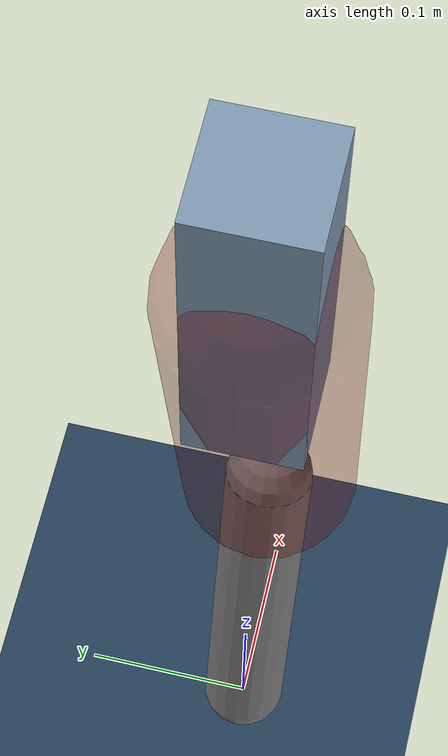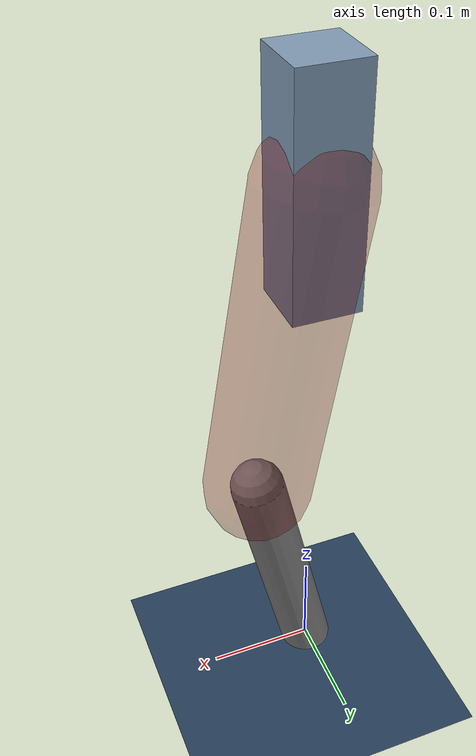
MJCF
<mujoco model="Hopper2D">
	<compiler inertiafromgeom="true" angle="radian" />
	<option timestep="0.001" integrator="implicit" cone="elliptic" solver="Newton" tolerance="1e-10" />

	<default>
		<geom contype="1" conaffinity="1" condim="3" friction="2 0.005 0.0001" solref="0.005 1" />
		<joint limited="true" damping="0.1" />
	</default>

	<asset>
		<texture name="skybox" type="skybox" builtin="gradient" rgb1=".4 .6 .8" rgb2="0 0 0" width="800" height="800" />
		<texture name="grid" type="2d" builtin="checker" rgb1=".1 .2 .3" rgb2=".2 .3 .4" width="300" height="300" mark="edge" markrgb=".2 .3 .4" />
		<material name="ground" texture="grid" texrepeat="1 1" texuniform="true" reflectance="0.1" />
		<material name="leg" rgba="0.5 0.6 0.7 1" />
	</asset>

	<worldbody>

		<geom name="floor" type="plane" size="5 5 0.25" material="ground" />

		<light directional="false" diffuse="0.8 0.8 0.8" specular="0.3 0.3 0.3" pos="0 0 2" dir="0 0 -1" />
		<light mode="targetbodycom" target="base" directional="false" diffuse="0.8 0.8 0.8" specular="0.3 0.3 0.3" pos="0 0 2" dir="0 0 -1" />

		<camera name="fixed" pos="0 -2 1" xyaxes="1 0 0 0 0 1" />
		<camera name="tracking" mode="trackcom" pos="0 -3 1" />

		<body name="root" pos="0 0 0.5154483163865156">
			<joint name="slide_x" type="slide" axis="1 0 0" range="-100 100" />
			<joint name="slide_z" type="slide" axis="0 0 1" range="0 10" />

			<body name="base" pos="0 0 0">
				<geom name="torso" type="box" size="0.03 0.03 0.1" mass="2.375" material="leg" />

				<body name="link1" pos="0 0 0" euler="0 1.3950873409280184 0">
					<joint type="hinge" axis="0 -1 0" pos="0 0 0" name="hinge1" limited="true" range="-3.14 3.14" stiffness="0" damping="0.1" />
					<geom name="thigh" type="capsule" fromto="0 0 0 0.2901626400437922 0 0" size="0.05" rgba="0.5 0 0 0.3" mass="0.9622391281182391" />

					<body name="link2" pos="0.2901626400437922 0 0" euler="0 0.39299194532295784 0">
						<joint type="hinge" axis="0 -1 0" pos="0 0 0" name="hinge2" limited="true" range="-3.14 3.14" stiffness="0" damping="0.1" />
						<geom name="shank" type="capsule" fromto="0 0 0 0.23528567634272335 0 0" size="0.025" mass="0.430357108708451" />

					</body>
				</body>
			</body>
		</body>
	</worldbody>

	<actuator>
		<motor name="torque1" joint="hinge1" ctrlrange="-105.5171294181392 105.5171294181392" ctrllimited="true" gear="1" />
		<motor name="torque2" joint="hinge2" ctrlrange="-46.96065735046975 46.96065735046975" ctrllimited="true" gear="1" />
	</actuator>
</mujoco>
